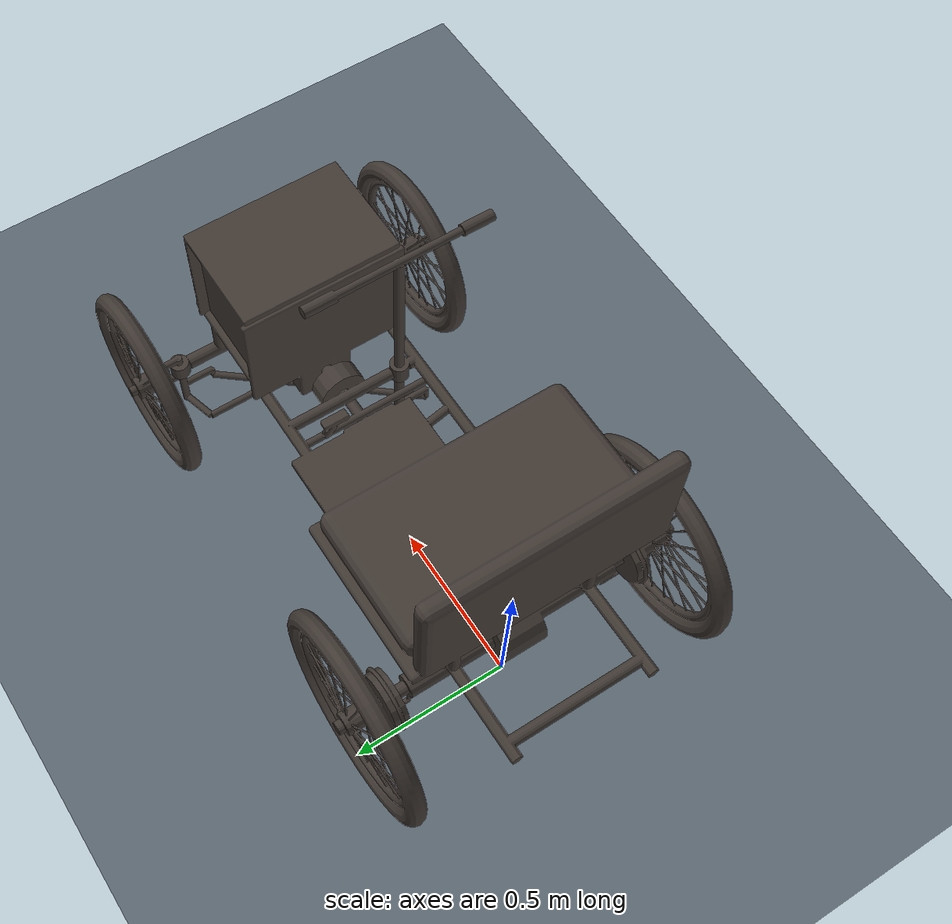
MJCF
<mujoco model="Benz Velo">
  <compiler angle="radian" inertiafromgeom="false" />
  <option timestep=".001" gravity="0 0 -9.81" integrator="implicitfast" cone="elliptic" impratio="50">
    <flag filterparent="disable" />
  </option>
  <visual>
    <global offwidth="1920" offheight="1080" />
  </visual>
  <default>
    <geom friction="0.8 .005 .0001" condim="3" solref=".005 1" />
  </default>
  <asset>
    <mesh name="chassis" file="chassis.obj" />
    <mesh name="knuckle_left" file="knuckle_left.obj" />
    <mesh name="knuckle_right" file="knuckle_right.obj" />
    <mesh name="tie_rod" file="tie_rod.obj" />
    <mesh name="column" file="column.obj" />
    <mesh name="drag_link" file="drag_link.obj" />
    <mesh name="rear_left" file="rear_left.obj" />
    <mesh name="front_left" file="front_left.obj" />
    <mesh name="rear_right" file="rear_right.obj" />
    <mesh name="front_right" file="front_right.obj" />
    <texture name="road_grid" type="2d" builtin="checker" rgb1=".25 .3 .34" rgb2=".45 .5 .54" width="256" height="256" />
    <material name="road" texture="road_grid" texrepeat="1 1" texuniform="true" />
  </asset>
  <worldbody>
    <light pos="0 -3 6" dir="0 0 -1" directional="true" />
    <geom name="slope" type="plane" size="1000 60 .1" quat="1 0 0 0" material="road" contype="1" conaffinity="6" />
    <body name="chassis" pos="0 0 0.003" quat="1 0 0 0">
      <freejoint name="root" />
      <inertial pos="0.55 0 0.45" mass="226.2" diaginertia="18 40 45" />
      <geom name="visual_chassis" type="mesh" mesh="chassis" contype="0" conaffinity="0" group="2" rgba=".25 .22 .2 1" />
      <geom name="Frame rail -1:0" type="capsule" contype="2" conaffinity="15" group="3" rgba=".2 .6 .3 .35" fromto="-0.349999994 -0.219999999 0.419999987 1.35000002 -0.219999999 0.419999987" size="0.018" />
      <geom name="Frame rail 1:0" type="capsule" contype="2" conaffinity="15" group="3" rgba=".2 .6 .3 .35" fromto="-0.349999994 0.219999999 0.419999987 1.35000002 0.219999999 0.419999987" size="0.018" />
      <geom name="Frame crossmember -0.3:0" type="cylinder" contype="2" conaffinity="15" group="3" rgba=".2 .6 .3 .35" fromto="-0.300000012 -0.220000029 0.420000017 -0.300000012 0.220000029 0.419999957" size="0.018" />
      <geom name="Frame crossmember 1.33:0" type="cylinder" contype="2" conaffinity="15" group="3" rgba=".2 .6 .3 .35" fromto="1.33000004 -0.220000029 0.420000017 1.33000004 0.220000029 0.419999957" size="0.018" />
      <geom name="Column bearing:0" type="cylinder" contype="2" conaffinity="15" group="3" rgba=".2 .6 .3 .35" fromto="0.819999993 -0.159999996 0.389999986 0.819999993 -0.159999996 0.449999988" size="0.03" />
      <geom name="Column crossmember -1:0" type="cylinder" contype="2" conaffinity="15" group="3" rgba=".2 .6 .3 .35" fromto="0.819999993 -0.219999999 0.419999987 0.819999993 -0.189999998 0.419999987" size="0.018" />
      <geom name="Column crossmember 1:0" type="cylinder" contype="2" conaffinity="15" group="3" rgba=".2 .6 .3 .35" fromto="0.819999993 -0.13000001 0.420000017 0.819999993 0.220000014 0.419999957" size="0.018" />
      <geom name="Axle housing:0" type="cylinder" contype="2" conaffinity="15" group="3" rgba=".2 .6 .3 .35" fromto="0 -0.340000033 0.330000073 0 0.340000033 0.329999954" size="0.035" />
      <geom name="Differential housing:0" type="cylinder" contype="2" conaffinity="15" group="3" rgba=".2 .6 .3 .35" fromto="0 -0.0700000077 0.330000013 0 0.0700000077 0.330000013" size="0.085" />
      <geom name="Rear axle:0" type="cylinder" contype="2" conaffinity="15" group="3" rgba=".2 .6 .3 .35" fromto="0 -0.560000062 0.330000103 0 0.560000062 0.329999924" size="0.02" />
      <geom name="Axle mount -1:0" type="cylinder" contype="2" conaffinity="15" group="3" rgba=".2 .6 .3 .35" fromto="0 -0.219999999 0.36500001 0 -0.219999999 0.439999998" size="0.025" />
      <geom name="Front hanger -1:0" type="cylinder" contype="2" conaffinity="15" group="3" rgba=".2 .6 .3 .35" fromto="1.25 -0.219999999 0.420000017 1.25 -0.219999999 0.300000012" size="0.02" />
      <geom name="Axle mount 1:0" type="cylinder" contype="2" conaffinity="15" group="3" rgba=".2 .6 .3 .35" fromto="0 0.219999999 0.36500001 0 0.219999999 0.439999998" size="0.025" />
      <geom name="Front hanger 1:0" type="cylinder" contype="2" conaffinity="15" group="3" rgba=".2 .6 .3 .35" fromto="1.25 0.219999999 0.420000017 1.25 0.219999999 0.300000012" size="0.02" />
      <geom name="Front beam:0" type="cylinder" contype="2" conaffinity="15" group="3" rgba=".2 .6 .3 .35" fromto="1.25 -0.335000038 0.300000072 1.25 0.335000038 0.299999952" size="0.022" />
      <geom name="Axle eye 1:0" type="cylinder" contype="2" conaffinity="15" group="3" rgba=".2 .6 .3 .35" fromto="1.25 0.36500001 0.275000036 1.25 0.36500001 0.324999988" size="0.03" />
      <geom name="Axle eye -1:0" type="cylinder" contype="2" conaffinity="15" group="3" rgba=".2 .6 .3 .35" fromto="1.25 -0.36500001 0.275000036 1.25 -0.36500001 0.324999988" size="0.03" />
      <geom name="Crankcase" type="box" contype="2" conaffinity="15" group="3" rgba=".2 .6 .3 .35" pos="1.08000004 0 0.340000004" quat="1 0 0 0" size="0.100000001 0.0900000036 0.0900000036" />
      <geom name="Cylinder:0" type="cylinder" contype="2" conaffinity="15" group="3" rgba=".2 .6 .3 .35" fromto="1.08000004 0 0.430000037 1.08000004 0 0.74000001" size="0.055" />
      <geom name="Cooling fin 0:0" type="cylinder" contype="2" conaffinity="15" group="3" rgba=".2 .6 .3 .35" fromto="1.08000004 0 0.5 1.08000004 0 0.506000042" size="0.085" />
      <geom name="Cooling fin 1:0" type="cylinder" contype="2" conaffinity="15" group="3" rgba=".2 .6 .3 .35" fromto="1.08000004 0 0.544999957 1.08000004 0 0.550999999" size="0.085" />
      <geom name="Cooling fin 2:0" type="cylinder" contype="2" conaffinity="15" group="3" rgba=".2 .6 .3 .35" fromto="1.08000004 0 0.589999974 1.08000004 0 0.596000016" size="0.085" />
      <geom name="Cooling fin 3:0" type="cylinder" contype="2" conaffinity="15" group="3" rgba=".2 .6 .3 .35" fromto="1.08000004 0 0.63499999 1.08000004 0 0.641000032" size="0.085" />
      <geom name="Cooling fin 4:0" type="cylinder" contype="2" conaffinity="15" group="3" rgba=".2 .6 .3 .35" fromto="1.08000004 0 0.679999948 1.08000004 0 0.68599999" size="0.085" />
      <geom name="Cooling fin 5:0" type="cylinder" contype="2" conaffinity="15" group="3" rgba=".2 .6 .3 .35" fromto="1.08000004 0 0.725000024 1.08000004 0 0.731000066" size="0.085" />
      <geom name="Engine bearer -1:0" type="cylinder" contype="2" conaffinity="15" group="3" rgba=".2 .6 .3 .35" fromto="1.08000004 -0.219999999 0.400000006 1.08000004 -0.0900000036 0.389999956" size="0.014" />
      <geom name="Engine bearer 1:0" type="cylinder" contype="2" conaffinity="15" group="3" rgba=".2 .6 .3 .35" fromto="1.08000004 0.219999999 0.399999976 1.08000004 0.0900000036 0.389999986" size="0.014" />
      <geom name="Clutch shaft:0" type="cylinder" contype="2" conaffinity="15" group="3" rgba=".2 .6 .3 .35" fromto="0.99000001 0 0.340000004 0.730000019 0 0.340000004" size="0.018" />
      <geom name="Clutch cone:0" type="cylinder" contype="2" conaffinity="15" group="3" rgba=".2 .6 .3 .35" fromto="0.879999995 0 0.340000004 0.939999938 0 0.340000004" size="0.075" />
      <geom name="Gearbox" type="box" contype="2" conaffinity="15" group="3" rgba=".2 .6 .3 .35" pos="0.629999995 0 0.340000004" quat="1 0 0 0" size="0.109999999 0.0900000036 0.0700000003" />
      <geom name="Gearbox cradle -1:0" type="cylinder" contype="2" conaffinity="15" group="3" rgba=".2 .6 .3 .35" fromto="0.629999995 -0.220000029 0.419999987 0.629999995 -0.0899999812 0.369999975" size="0.014" />
      <geom name="Gearbox cradle 1:0" type="cylinder" contype="2" conaffinity="15" group="3" rgba=".2 .6 .3 .35" fromto="0.629999995 0.220000029 0.419999987 0.629999995 0.0899999812 0.369999975" size="0.014" />
      <geom name="Gearbox output:0" type="cylinder" contype="2" conaffinity="15" group="3" rgba=".2 .6 .3 .35" fromto="0.519999981 0 0.340000004 0.481999993 0 0.340000004" size="0.018" />
      <geom name="Front universal joint:0" type="cylinder" contype="2" conaffinity="15" group="3" rgba=".2 .6 .3 .35" fromto="0.481999993 -0.0279999971 0.340000004 0.481999993 0.0279999971 0.340000004" size="0.028" />
      <geom name="Propeller shaft:0" type="cylinder" contype="2" conaffinity="15" group="3" rgba=".2 .6 .3 .35" fromto="0.481999993 1.52525619e-08 0.340000004 0.139999986 -1.52525619e-08 0.335000008" size="0.016" />
      <geom name="Rear universal joint:0" type="cylinder" contype="2" conaffinity="15" group="3" rgba=".2 .6 .3 .35" fromto="0.140000001 -0.0279999971 0.335000008 0.140000001 0.0279999971 0.335000008" size="0.028" />
      <geom name="Pinion shaft:0" type="cylinder" contype="2" conaffinity="15" group="3" rgba=".2 .6 .3 .35" fromto="0.140000001 0 0.330000013 0.0700000077 0 0.330000013" size="0.018" />
      <geom name="Rear brake band -1:0" type="capsule" contype="2" conaffinity="15" group="3" rgba=".2 .6 .3 .35" fromto="0.0909999982 -0.402500004 0.330000013 0.0892514586 -0.402500004 0.347753227" size="0.006" />
      <geom name="Rear brake band -1:1" type="capsule" contype="2" conaffinity="15" group="3" rgba=".2 .6 .3 .35" fromto="0.0892514586 -0.402500004 0.347753227 0.0840730369 -0.402500004 0.364824206" size="0.006" />
      <geom name="Rear brake band -1:2" type="capsule" contype="2" conaffinity="15" group="3" rgba=".2 .6 .3 .35" fromto="0.0840730369 -0.402500004 0.364824206 0.075663738 -0.402500004 0.380556911" size="0.006" />
      <geom name="Rear brake band -1:3" type="capsule" contype="2" conaffinity="15" group="3" rgba=".2 .6 .3 .35" fromto="0.075663738 -0.402500004 0.380556911 0.0643467158 -0.402500004 0.394346714" size="0.006" />
      <geom name="Rear brake band -1:4" type="capsule" contype="2" conaffinity="15" group="3" rgba=".2 .6 .3 .35" fromto="0.0643467158 -0.402500004 0.394346714 0.0505568907 -0.402500004 0.405663759" size="0.006" />
      <geom name="Rear brake band -1:5" type="capsule" contype="2" conaffinity="15" group="3" rgba=".2 .6 .3 .35" fromto="0.0505568907 -0.402500004 0.405663759 0.0348241925 -0.402500004 0.41407305" size="0.006" />
      <geom name="Rear brake band -1:6" type="capsule" contype="2" conaffinity="15" group="3" rgba=".2 .6 .3 .35" fromto="0.0348241925 -0.402500004 0.41407305 0.0177532192 -0.402500004 0.419251472" size="0.006" />
      <geom name="Rear brake band -1:7" type="capsule" contype="2" conaffinity="15" group="3" rgba=".2 .6 .3 .35" fromto="0.0177532192 -0.402500004 0.419251472 5.57214296e-18 -0.402500004 0.421000004" size="0.006" />
      <geom name="Rear brake band -1:8" type="capsule" contype="2" conaffinity="15" group="3" rgba=".2 .6 .3 .35" fromto="5.57214296e-18 -0.402500004 0.421000004 -0.0177532192 -0.402500004 0.419251472" size="0.006" />
      <geom name="Rear brake band -1:9" type="capsule" contype="2" conaffinity="15" group="3" rgba=".2 .6 .3 .35" fromto="-0.0177532192 -0.402500004 0.419251472 -0.0348241925 -0.402500004 0.41407305" size="0.006" />
      <geom name="Rear brake band -1:10" type="capsule" contype="2" conaffinity="15" group="3" rgba=".2 .6 .3 .35" fromto="-0.0348241925 -0.402500004 0.41407305 -0.0505568907 -0.402500004 0.405663759" size="0.006" />
      <geom name="Rear brake band -1:11" type="capsule" contype="2" conaffinity="15" group="3" rgba=".2 .6 .3 .35" fromto="-0.0505568907 -0.402500004 0.405663759 -0.0643467158 -0.402500004 0.394346714" size="0.006" />
      <geom name="Rear brake band -1:12" type="capsule" contype="2" conaffinity="15" group="3" rgba=".2 .6 .3 .35" fromto="-0.0643467158 -0.402500004 0.394346714 -0.075663738 -0.402500004 0.380556911" size="0.006" />
      <geom name="Rear brake band -1:13" type="capsule" contype="2" conaffinity="15" group="3" rgba=".2 .6 .3 .35" fromto="-0.075663738 -0.402500004 0.380556911 -0.0840730369 -0.402500004 0.364824206" size="0.006" />
      <geom name="Rear brake band -1:14" type="capsule" contype="2" conaffinity="15" group="3" rgba=".2 .6 .3 .35" fromto="-0.0840730369 -0.402500004 0.364824206 -0.0892514586 -0.402500004 0.347753227" size="0.006" />
      <geom name="Rear brake band -1:15" type="capsule" contype="2" conaffinity="15" group="3" rgba=".2 .6 .3 .35" fromto="-0.0892514586 -0.402500004 0.347753227 -0.0909999982 -0.402500004 0.330000013" size="0.006" />
      <geom name="Rear brake band -1:16" type="capsule" contype="2" conaffinity="15" group="3" rgba=".2 .6 .3 .35" fromto="-0.0909999982 -0.402500004 0.330000013 -0.0892514586 -0.402500004 0.312246799" size="0.006" />
      <geom name="Rear brake band -1:17" type="capsule" contype="2" conaffinity="15" group="3" rgba=".2 .6 .3 .35" fromto="-0.0892514586 -0.402500004 0.312246799 -0.0840730369 -0.402500004 0.295175821" size="0.006" />
      <geom name="Rear brake band -1:18" type="capsule" contype="2" conaffinity="15" group="3" rgba=".2 .6 .3 .35" fromto="-0.0840730369 -0.402500004 0.295175821 -0.075663738 -0.402500004 0.279443115" size="0.006" />
      <geom name="Rear brake band -1:19" type="capsule" contype="2" conaffinity="15" group="3" rgba=".2 .6 .3 .35" fromto="-0.075663738 -0.402500004 0.279443115 -0.0643467158 -0.402500004 0.265653312" size="0.006" />
      <geom name="Rear brake band -1:20" type="capsule" contype="2" conaffinity="15" group="3" rgba=".2 .6 .3 .35" fromto="-0.0643467158 -0.402500004 0.265653312 -0.0505568907 -0.402500004 0.254336268" size="0.006" />
      <geom name="Rear brake band -1:21" type="capsule" contype="2" conaffinity="15" group="3" rgba=".2 .6 .3 .35" fromto="-0.0505568907 -0.402500004 0.254336268 -0.0348241925 -0.402500004 0.245926976" size="0.006" />
      <geom name="Rear brake band -1:22" type="capsule" contype="2" conaffinity="15" group="3" rgba=".2 .6 .3 .35" fromto="-0.0348241925 -0.402500004 0.245926976 -0.0177532192 -0.402500004 0.240748554" size="0.006" />
      <geom name="Rear brake band -1:23" type="capsule" contype="2" conaffinity="15" group="3" rgba=".2 .6 .3 .35" fromto="-0.0177532192 -0.402500004 0.240748554 -1.67164285e-17 -0.402500004 0.239000022" size="0.006" />
      <geom name="Rear brake band -1:24" type="capsule" contype="2" conaffinity="15" group="3" rgba=".2 .6 .3 .35" fromto="-1.67164285e-17 -0.402500004 0.239000022 0.0177532192 -0.402500004 0.240748554" size="0.006" />
      <geom name="Rear brake band -1:25" type="capsule" contype="2" conaffinity="15" group="3" rgba=".2 .6 .3 .35" fromto="0.0177532192 -0.402500004 0.240748554 0.0348241925 -0.402500004 0.245926976" size="0.006" />
      <geom name="Rear brake band -1:26" type="capsule" contype="2" conaffinity="15" group="3" rgba=".2 .6 .3 .35" fromto="0.0348241925 -0.402500004 0.245926976 0.0505568907 -0.402500004 0.254336268" size="0.006" />
      <geom name="Rear brake band -1:27" type="capsule" contype="2" conaffinity="15" group="3" rgba=".2 .6 .3 .35" fromto="0.0505568907 -0.402500004 0.254336268 0.0643467158 -0.402500004 0.265653312" size="0.006" />
      <geom name="Rear brake band -1:28" type="capsule" contype="2" conaffinity="15" group="3" rgba=".2 .6 .3 .35" fromto="0.0643467158 -0.402500004 0.265653312 0.075663738 -0.402500004 0.279443115" size="0.006" />
      <geom name="Rear brake band -1:29" type="capsule" contype="2" conaffinity="15" group="3" rgba=".2 .6 .3 .35" fromto="0.075663738 -0.402500004 0.279443115 0.0840730369 -0.402500004 0.295175821" size="0.006" />
      <geom name="Rear brake band -1:30" type="capsule" contype="2" conaffinity="15" group="3" rgba=".2 .6 .3 .35" fromto="0.0840730369 -0.402500004 0.295175821 0.0892514586 -0.402500004 0.312246799" size="0.006" />
      <geom name="Rear brake band -1:31" type="capsule" contype="2" conaffinity="15" group="3" rgba=".2 .6 .3 .35" fromto="0.0892514586 -0.402500004 0.312246799 0.0909999982 -0.402500004 0.330000013" size="0.006" />
      <geom name="Rear brake anchor -1:0" type="capsule" contype="2" conaffinity="15" group="3" rgba=".2 .6 .3 .35" fromto="0 -0.402500004 0.231000006 0 -0.402500004 0.215000004" size="0.008" />
      <geom name="Rear brake anchor -1:1" type="capsule" contype="2" conaffinity="15" group="3" rgba=".2 .6 .3 .35" fromto="0 -0.402500004 0.215000004 0 -0.330000013 0.215000004" size="0.008" />
      <geom name="Rear brake anchor -1:2" type="capsule" contype="2" conaffinity="15" group="3" rgba=".2 .6 .3 .35" fromto="0 -0.330000013 0.215000004 0 -0.330000013 0.294999987" size="0.008" />
      <geom name="Rear brake band 1:0" type="capsule" contype="2" conaffinity="15" group="3" rgba=".2 .6 .3 .35" fromto="0.0909999982 0.402500004 0.330000013 0.0892514586 0.402500004 0.347753227" size="0.006" />
      <geom name="Rear brake band 1:1" type="capsule" contype="2" conaffinity="15" group="3" rgba=".2 .6 .3 .35" fromto="0.0892514586 0.402500004 0.347753227 0.0840730369 0.402500004 0.364824206" size="0.006" />
      <geom name="Rear brake band 1:2" type="capsule" contype="2" conaffinity="15" group="3" rgba=".2 .6 .3 .35" fromto="0.0840730369 0.402500004 0.364824206 0.075663738 0.402500004 0.380556911" size="0.006" />
      <geom name="Rear brake band 1:3" type="capsule" contype="2" conaffinity="15" group="3" rgba=".2 .6 .3 .35" fromto="0.075663738 0.402500004 0.380556911 0.0643467158 0.402500004 0.394346714" size="0.006" />
      <geom name="Rear brake band 1:4" type="capsule" contype="2" conaffinity="15" group="3" rgba=".2 .6 .3 .35" fromto="0.0643467158 0.402500004 0.394346714 0.0505568907 0.402500004 0.405663759" size="0.006" />
      <geom name="Rear brake band 1:5" type="capsule" contype="2" conaffinity="15" group="3" rgba=".2 .6 .3 .35" fromto="0.0505568907 0.402500004 0.405663759 0.0348241925 0.402500004 0.41407305" size="0.006" />
      <geom name="Rear brake band 1:6" type="capsule" contype="2" conaffinity="15" group="3" rgba=".2 .6 .3 .35" fromto="0.0348241925 0.402500004 0.41407305 0.0177532192 0.402500004 0.419251472" size="0.006" />
      <geom name="Rear brake band 1:7" type="capsule" contype="2" conaffinity="15" group="3" rgba=".2 .6 .3 .35" fromto="0.0177532192 0.402500004 0.419251472 5.57214296e-18 0.402500004 0.421000004" size="0.006" />
      <geom name="Rear brake band 1:8" type="capsule" contype="2" conaffinity="15" group="3" rgba=".2 .6 .3 .35" fromto="5.57214296e-18 0.402500004 0.421000004 -0.0177532192 0.402500004 0.419251472" size="0.006" />
      <geom name="Rear brake band 1:9" type="capsule" contype="2" conaffinity="15" group="3" rgba=".2 .6 .3 .35" fromto="-0.0177532192 0.402500004 0.419251472 -0.0348241925 0.402500004 0.41407305" size="0.006" />
      <geom name="Rear brake band 1:10" type="capsule" contype="2" conaffinity="15" group="3" rgba=".2 .6 .3 .35" fromto="-0.0348241925 0.402500004 0.41407305 -0.0505568907 0.402500004 0.405663759" size="0.006" />
      <geom name="Rear brake band 1:11" type="capsule" contype="2" conaffinity="15" group="3" rgba=".2 .6 .3 .35" fromto="-0.0505568907 0.402500004 0.405663759 -0.0643467158 0.402500004 0.394346714" size="0.006" />
      <geom name="Rear brake band 1:12" type="capsule" contype="2" conaffinity="15" group="3" rgba=".2 .6 .3 .35" fromto="-0.0643467158 0.402500004 0.394346714 -0.075663738 0.402500004 0.380556911" size="0.006" />
      <geom name="Rear brake band 1:13" type="capsule" contype="2" conaffinity="15" group="3" rgba=".2 .6 .3 .35" fromto="-0.075663738 0.402500004 0.380556911 -0.0840730369 0.402500004 0.364824206" size="0.006" />
      <geom name="Rear brake band 1:14" type="capsule" contype="2" conaffinity="15" group="3" rgba=".2 .6 .3 .35" fromto="-0.0840730369 0.402500004 0.364824206 -0.0892514586 0.402500004 0.347753227" size="0.006" />
      <geom name="Rear brake band 1:15" type="capsule" contype="2" conaffinity="15" group="3" rgba=".2 .6 .3 .35" fromto="-0.0892514586 0.402500004 0.347753227 -0.0909999982 0.402500004 0.330000013" size="0.006" />
      <geom name="Rear brake band 1:16" type="capsule" contype="2" conaffinity="15" group="3" rgba=".2 .6 .3 .35" fromto="-0.0909999982 0.402500004 0.330000013 -0.0892514586 0.402500004 0.312246799" size="0.006" />
      <geom name="Rear brake band 1:17" type="capsule" contype="2" conaffinity="15" group="3" rgba=".2 .6 .3 .35" fromto="-0.0892514586 0.402500004 0.312246799 -0.0840730369 0.402500004 0.295175821" size="0.006" />
      <geom name="Rear brake band 1:18" type="capsule" contype="2" conaffinity="15" group="3" rgba=".2 .6 .3 .35" fromto="-0.0840730369 0.402500004 0.295175821 -0.075663738 0.402500004 0.279443115" size="0.006" />
      <geom name="Rear brake band 1:19" type="capsule" contype="2" conaffinity="15" group="3" rgba=".2 .6 .3 .35" fromto="-0.075663738 0.402500004 0.279443115 -0.0643467158 0.402500004 0.265653312" size="0.006" />
      <geom name="Rear brake band 1:20" type="capsule" contype="2" conaffinity="15" group="3" rgba=".2 .6 .3 .35" fromto="-0.0643467158 0.402500004 0.265653312 -0.0505568907 0.402500004 0.254336268" size="0.006" />
      <geom name="Rear brake band 1:21" type="capsule" contype="2" conaffinity="15" group="3" rgba=".2 .6 .3 .35" fromto="-0.0505568907 0.402500004 0.254336268 -0.0348241925 0.402500004 0.245926976" size="0.006" />
      <geom name="Rear brake band 1:22" type="capsule" contype="2" conaffinity="15" group="3" rgba=".2 .6 .3 .35" fromto="-0.0348241925 0.402500004 0.245926976 -0.0177532192 0.402500004 0.240748554" size="0.006" />
      <geom name="Rear brake band 1:23" type="capsule" contype="2" conaffinity="15" group="3" rgba=".2 .6 .3 .35" fromto="-0.0177532192 0.402500004 0.240748554 -1.67164285e-17 0.402500004 0.239000022" size="0.006" />
      <geom name="Rear brake band 1:24" type="capsule" contype="2" conaffinity="15" group="3" rgba=".2 .6 .3 .35" fromto="-1.67164285e-17 0.402500004 0.239000022 0.0177532192 0.402500004 0.240748554" size="0.006" />
      <geom name="Rear brake band 1:25" type="capsule" contype="2" conaffinity="15" group="3" rgba=".2 .6 .3 .35" fromto="0.0177532192 0.402500004 0.240748554 0.0348241925 0.402500004 0.245926976" size="0.006" />
      <geom name="Rear brake band 1:26" type="capsule" contype="2" conaffinity="15" group="3" rgba=".2 .6 .3 .35" fromto="0.0348241925 0.402500004 0.245926976 0.0505568907 0.402500004 0.254336268" size="0.006" />
      <geom name="Rear brake band 1:27" type="capsule" contype="2" conaffinity="15" group="3" rgba=".2 .6 .3 .35" fromto="0.0505568907 0.402500004 0.254336268 0.0643467158 0.402500004 0.265653312" size="0.006" />
      <geom name="Rear brake band 1:28" type="capsule" contype="2" conaffinity="15" group="3" rgba=".2 .6 .3 .35" fromto="0.0643467158 0.402500004 0.265653312 0.075663738 0.402500004 0.279443115" size="0.006" />
      <geom name="Rear brake band 1:29" type="capsule" contype="2" conaffinity="15" group="3" rgba=".2 .6 .3 .35" fromto="0.075663738 0.402500004 0.279443115 0.0840730369 0.402500004 0.295175821" size="0.006" />
      <geom name="Rear brake band 1:30" type="capsule" contype="2" conaffinity="15" group="3" rgba=".2 .6 .3 .35" fromto="0.0840730369 0.402500004 0.295175821 0.0892514586 0.402500004 0.312246799" size="0.006" />
      <geom name="Rear brake band 1:31" type="capsule" contype="2" conaffinity="15" group="3" rgba=".2 .6 .3 .35" fromto="0.0892514586 0.402500004 0.312246799 0.0909999982 0.402500004 0.330000013" size="0.006" />
      <geom name="Rear brake anchor 1:0" type="capsule" contype="2" conaffinity="15" group="3" rgba=".2 .6 .3 .35" fromto="0 0.402500004 0.231000006 0 0.402500004 0.215000004" size="0.008" />
      <geom name="Rear brake anchor 1:1" type="capsule" contype="2" conaffinity="15" group="3" rgba=".2 .6 .3 .35" fromto="0 0.402500004 0.215000004 0 0.330000013 0.215000004" size="0.008" />
      <geom name="Rear brake anchor 1:2" type="capsule" contype="2" conaffinity="15" group="3" rgba=".2 .6 .3 .35" fromto="0 0.330000013 0.215000004 0 0.330000013 0.294999987" size="0.008" />
      <geom name="Pedal shaft:0" type="cylinder" contype="2" conaffinity="15" group="3" rgba=".2 .6 .3 .35" fromto="0.75999999 -0.220000029 0.390000015 0.75999999 0.220000029 0.389999956" size="0.012" />
      <geom name="Pedal:0" type="cylinder" contype="2" conaffinity="15" group="3" rgba=".2 .6 .3 .35" fromto="0.75999999 0.13000001 0.389999986 0.700000048 0.12999998 0.550000012" size="0.014" />
      <geom name="Pedal pad" type="box" contype="2" conaffinity="15" group="3" rgba=".2 .6 .3 .35" pos="0.699999988 0.129999995 0.560000002" quat="1 0 0 0" size="0.0149999997 0.0399999991 0.00999999978" />
      <geom name="Seat support -0.05.-1:0" type="cylinder" contype="2" conaffinity="15" group="3" rgba=".2 .6 .3 .35" fromto="-0.0500000007 -0.219999999 0.420000017 -0.0500000007 -0.219999999 0.699999988" size="0.016" />
      <geom name="Seat support -0.05.1:0" type="cylinder" contype="2" conaffinity="15" group="3" rgba=".2 .6 .3 .35" fromto="-0.0500000007 0.219999999 0.420000017 -0.0500000007 0.219999999 0.699999988" size="0.016" />
      <geom name="Seat support 0.3.-1:0" type="cylinder" contype="2" conaffinity="15" group="3" rgba=".2 .6 .3 .35" fromto="0.300000012 -0.219999999 0.420000017 0.300000012 -0.219999999 0.699999988" size="0.016" />
      <geom name="Seat support 0.3.1:0" type="cylinder" contype="2" conaffinity="15" group="3" rgba=".2 .6 .3 .35" fromto="0.300000012 0.219999999 0.420000017 0.300000012 0.219999999 0.699999988" size="0.016" />
      <geom name="Seat base" type="box" contype="2" conaffinity="15" group="3" rgba=".2 .6 .3 .35" pos="0.129999995 0 0.714999974" quat="1 0 0 0" size="0.25 0.400000006 0.0149999997" />
      <geom name="Seat cushion" type="box" contype="2" conaffinity="15" group="3" rgba=".2 .6 .3 .35" pos="0.144999996 0 0.769999981" quat="1 0 0 0" size="0.219999999 0.379999995 0.0399999991" />
      <geom name="Seat back" type="box" contype="2" conaffinity="15" group="3" rgba=".2 .6 .3 .35" pos="-0.104999997 0 0.920000017" quat="1 0 0 0" size="0.0299999993 0.379999995 0.189999998" />
      <geom name="Footboard" type="box" contype="2" conaffinity="15" group="3" rgba=".2 .6 .3 .35" pos="0.555000007 0.0799999982 0.450500011" quat="1 0 0 0" size="0.144999996 0.200000003 0.0125000002" />
      <geom name="Dash" type="box" contype="2" conaffinity="15" group="3" rgba=".2 .6 .3 .35" pos="0.954999983 0 0.61500001" quat="1 0 0 0" size="0.00999999978 0.25999999 0.185000002" />
      <geom name="Bonnet side -1" type="box" contype="2" conaffinity="15" group="3" rgba=".2 .6 .3 .35" pos="1.13 -0.211999997 0.61500001" quat="1 0 0 0" size="0.165000007 0.00600000005 0.185000002" />
      <geom name="Bonnet side 1" type="box" contype="2" conaffinity="15" group="3" rgba=".2 .6 .3 .35" pos="1.13 0.211999997 0.61500001" quat="1 0 0 0" size="0.165000007 0.00600000005 0.185000002" />
      <geom name="Bonnet lid" type="box" contype="2" conaffinity="15" group="3" rgba=".2 .6 .3 .35" pos="1.13 0 0.810000002" quat="1 0 0 0" size="0.174999997 0.25 0.00999999978" />
      <geom name="Bonnet front" type="box" contype="2" conaffinity="15" group="3" rgba=".2 .6 .3 .35" pos="1.29999995 0 0.61500001" quat="1 0 0 0" size="0.00600000005 0.25 0.185000002" />
      <body name="knuckle_left" pos="1.25 0.365 0.3">
        <joint name="knuckle_left_joint" type="hinge" axis="0 0 1" damping="0.5" armature="0.01" />
        <inertial pos="-0.00619647981 0.0255830482 -0.0514072662" mass="1.5" fullinertia="0.013219205 0.00855052671 0.00598611739 -0.000444760825 -0.00110228638 -0.00350457053" />
        <geom name="visual_knuckle_left" type="mesh" mesh="knuckle_left" contype="0" conaffinity="0" group="2" rgba=".25 .22 .2 1" />
        <geom name="Kingpin 1:0" type="cylinder" contype="2" conaffinity="15" group="3" rgba=".2 .6 .3 .35" fromto="0 0 -0.180000007 0 0 0.0499999821" size="0.012" />
        <geom name="Knuckle upper ear 1:0" type="cylinder" contype="2" conaffinity="15" group="3" rgba=".2 .6 .3 .35" fromto="0 0 0.0409999788 0 0.0479999781 0.0409999788" size="0.012" />
        <geom name="Knuckle lower ear 1:0" type="cylinder" contype="2" conaffinity="15" group="3" rgba=".2 .6 .3 .35" fromto="0 0 -0.0410000086 0 0.0479999781 -0.0410000086" size="0.012" />
        <geom name="Knuckle web 1:0" type="cylinder" contype="2" conaffinity="15" group="3" rgba=".2 .6 .3 .35" fromto="0 0.0479999781 -0.0410000086 0 0.0479999781 0.0410000086" size="0.012" />
        <geom name="Stub axle 1:0" type="cylinder" contype="2" conaffinity="15" group="3" rgba=".2 .6 .3 .35" fromto="0 0.0479999781 0 0 0.170000017 0" size="0.015" />
        <geom name="Steering arm 1:0" type="cylinder" contype="2" conaffinity="15" group="3" rgba=".2 .6 .3 .35" fromto="0 2.98023224e-08 -0.170000017 -0.105590582 -0.0308324397 -0.170000017" size="0.011" />
        <geom name="Drag arm:0" type="cylinder" contype="2" conaffinity="15" group="3" rgba=".2 .6 .3 .35" fromto="0 0 -0.100000009 0 -0.100000024 -0.100000009" size="0.011" />
        <geom name="Drag arm stud:0" type="cylinder" contype="2" conaffinity="15" group="3" rgba=".2 .6 .3 .35" fromto="0 -0.100000024 -0.100000009 0 -0.100000024 -0.128000006" size="0.008" />
        <body name="tie_rod" pos="-0.105590534 -0.030832436 -0.17">
          <joint name="tie_rod_joint" type="hinge" axis="0 0 1" damping="0.5" armature="0.01" />
          <inertial pos="0 -0.334167585 1.18168659e-24" mass="0.7" fullinertia="0.0347481539 7e-06 0.0347481539 0 0 -4.64751979e-09" />
          <geom name="visual_tie_rod" type="mesh" mesh="tie_rod" contype="0" conaffinity="0" group="2" rgba=".25 .22 .2 1" />
          <geom name="Tie rod:0" type="cylinder" contype="2" conaffinity="15" group="3" rgba=".2 .6 .3 .35" fromto="0 2.98023224e-08 4.47034836e-08 0 -0.668335199 -4.47034836e-08" size="0.011" />
        </body>
        <body name="front_left" pos="0 0.11 0">
          <joint name="front_left_joint" type="hinge" axis="0 1 0" damping=".01" solreffriction=".004 1" solimpfriction=".999 .999 .001 .5 2" />
          <inertial pos="0 0 0" mass="4.0" diaginertia="0.18 0.36 0.18" />
          <geom name="front_left_envelope" type="cylinder" fromto="0 -0.035 0 0 0.035 0" size="0.3" contype="8" conaffinity="2" group="3" rgba=".2 .2 .2 .2" />
          <geom name="front_left_rolling" type="ellipsoid" size="0.3 0.03 0.3" solref="-2300 -48" solimp="0.5 0.95 0.01 0.5 2" contype="4" conaffinity="3" group="3" rgba=".1 .1 .1 .5" />
          <geom name="visual_front_left" type="mesh" mesh="front_left" contype="0" conaffinity="0" group="2" rgba=".25 .22 .2 1" />
          <geom name="front_left.hub:0" type="cylinder" contype="2" conaffinity="15" group="3" rgba=".2 .6 .3 .35" fromto="0 -0.0399999917 0 0 0.0399999917 0" size="0.035" />
        </body>
      </body>
      <body name="knuckle_right" pos="1.25 -0.365 0.3">
        <joint name="knuckle_right_joint" type="hinge" axis="0 0 1" damping="0.5" armature="0.01" />
        <inertial pos="-0.00706151532 -0.0370349343 -0.044371545" mass="1.5" fullinertia="0.0125820873 0.00911983121 0.00494319169 0.000628151296 -0.00133069114 0.00299074562" />
        <geom name="visual_knuckle_right" type="mesh" mesh="knuckle_right" contype="0" conaffinity="0" group="2" rgba=".25 .22 .2 1" />
        <geom name="Kingpin -1:0" type="cylinder" contype="2" conaffinity="15" group="3" rgba=".2 .6 .3 .35" fromto="0 0 -0.180000007 0 0 0.0499999821" size="0.012" />
        <geom name="Knuckle upper ear -1:0" type="cylinder" contype="2" conaffinity="15" group="3" rgba=".2 .6 .3 .35" fromto="0 0 0.0409999788 0 -0.0479999781 0.0409999788" size="0.012" />
        <geom name="Knuckle lower ear -1:0" type="cylinder" contype="2" conaffinity="15" group="3" rgba=".2 .6 .3 .35" fromto="0 0 -0.0410000086 0 -0.0479999781 -0.0410000086" size="0.012" />
        <geom name="Knuckle web -1:0" type="cylinder" contype="2" conaffinity="15" group="3" rgba=".2 .6 .3 .35" fromto="0 -0.0479999781 -0.0410000086 0 -0.0479999781 0.0410000086" size="0.012" />
        <geom name="Stub axle -1:0" type="cylinder" contype="2" conaffinity="15" group="3" rgba=".2 .6 .3 .35" fromto="0 -0.0479999781 0 0 -0.170000017 0" size="0.015" />
        <geom name="Steering arm -1:0" type="cylinder" contype="2" conaffinity="15" group="3" rgba=".2 .6 .3 .35" fromto="0 0 -0.170000002 -0.105590582 0.0308324099 -0.170000032" size="0.011" />
        <body name="front_right" pos="0 -0.11 0">
          <joint name="front_right_joint" type="hinge" axis="0 1 0" damping=".01" solreffriction=".004 1" solimpfriction=".999 .999 .001 .5 2" />
          <inertial pos="0 0 0" mass="4.0" diaginertia="0.18 0.36 0.18" />
          <geom name="front_right_envelope" type="cylinder" fromto="0 -0.035 0 0 0.035 0" size="0.3" contype="8" conaffinity="2" group="3" rgba=".2 .2 .2 .2" />
          <geom name="front_right_rolling" type="ellipsoid" size="0.3 0.03 0.3" solref="-2300 -48" solimp="0.5 0.95 0.01 0.5 2" contype="4" conaffinity="3" group="3" rgba=".1 .1 .1 .5" />
          <geom name="visual_front_right" type="mesh" mesh="front_right" contype="0" conaffinity="0" group="2" rgba=".25 .22 .2 1" />
          <geom name="front_right.hub:0" type="cylinder" contype="2" conaffinity="15" group="3" rgba=".2 .6 .3 .35" fromto="0 -0.0399999917 0 0 0.0399999917 0" size="0.035" />
        </body>
      </body>
      <body name="column" pos="0.82 -0.16 0.2">
        <joint name="column_joint" type="hinge" axis="0 0 1" damping="0.5" armature="0.01" limited="true" range="-0.523598776 0.523598776" />
        <inertial pos="0 -0.00270488348 0.503776183" mass="1.5" fullinertia="0.139707494 0.115669497 0.0240529969 0 0 -0.00201039146" />
        <geom name="visual_column" type="mesh" mesh="column" contype="0" conaffinity="0" group="2" rgba=".25 .22 .2 1" />
        <geom name="Steering column:0" type="cylinder" contype="2" conaffinity="15" group="3" rgba=".2 .6 .3 .35" fromto="0 0 0.0149999708 0 0 0.75" size="0.016" />
        <geom name="Pitman arm:0" type="cylinder" contype="2" conaffinity="15" group="3" rgba=".2 .6 .3 .35" fromto="0 0 0.0150000006 0 -0.099999994 0.0150000006" size="0.011" />
        <geom name="Pitman stud:0" type="cylinder" contype="2" conaffinity="15" group="3" rgba=".2 .6 .3 .35" fromto="0 -0.099999994 0.0150000006 0 -0.099999994 -0.0279999822" size="0.008" />
        <geom name="Handlebar:0" type="cylinder" contype="2" conaffinity="15" group="3" rgba=".2 .6 .3 .35" fromto="0 -0.200000048 0.75 0 0.200000018 0.75" size="0.012" />
        <geom name="Handlebar grip -1:0" type="cylinder" contype="2" conaffinity="15" group="3" rgba=".2 .6 .3 .35" fromto="0 -0.200000018 0.75 0 -0.300000042 0.75" size="0.018" />
        <geom name="Handlebar grip 1:0" type="cylinder" contype="2" conaffinity="15" group="3" rgba=".2 .6 .3 .35" fromto="0 0.199999988 0.75 0 0.300000012 0.75" size="0.018" />
        <body name="drag_link" pos="0 -0.1 -0.028">
          <joint name="drag_link_joint" type="hinge" axis="0 0 1" damping="0.5" armature="0.01" />
          <inertial pos="0.214999974 0.262499973 1.03397577e-24" mass="0.6" fullinertia="0.0183810004 0.0123326705 0.0307076709 -0.0150500025 8.54333374e-10 1.0430813e-09" />
          <geom name="visual_drag_link" type="mesh" mesh="drag_link" contype="0" conaffinity="0" group="2" rgba=".25 .22 .2 1" />
          <geom name="Drag link:0" type="cylinder" contype="2" conaffinity="15" group="3" rgba=".2 .6 .3 .35" fromto="-5.96046448e-08 -2.98023224e-08 1.49011612e-08 0.430000007 0.524999976 -1.49011612e-08" size="0.011" />
        </body>
      </body>
      <body name="rear_left" pos="0 0.5 0.33">
        <joint name="rear_left_joint" type="hinge" axis="0 1 0" damping=".01" solreffriction=".004 1" solimpfriction=".999 .999 .001 .5 2" />
        <inertial pos="0 0 0" mass="5.0" diaginertia="0.27225 0.5445 0.27225" />
        <geom name="rear_left_envelope" type="cylinder" fromto="0 -0.035 0 0 0.035 0" size="0.33" contype="8" conaffinity="2" group="3" rgba=".2 .2 .2 .2" />
        <geom name="rear_left_rolling" type="ellipsoid" size="0.33 0.03 0.33" solref="-2300 -48" solimp="0.5 0.95 0.01 0.5 2" contype="4" conaffinity="3" group="3" rgba=".1 .1 .1 .5" />
        <geom name="visual_rear_left" type="mesh" mesh="rear_left" contype="0" conaffinity="0" group="2" rgba=".25 .22 .2 1" />
        <geom name="rear_left.hub:0" type="cylinder" contype="2" conaffinity="15" group="3" rgba=".2 .6 .3 .35" fromto="0 -0.0400000215 0 0 0.0400000215 0" size="0.035" />
        <geom name="rear_left.brake_drum:0" type="cylinder" contype="2" conaffinity="15" group="3" rgba=".2 .6 .3 .35" fromto="0 -0.120000005 0 0 -0.0749999881 0" size="0.085" />
        <geom name="rear_left.drum_carrier:0" type="cylinder" contype="2" conaffinity="15" group="3" rgba=".2 .6 .3 .35" fromto="0 -0.0800000131 0 0 -0.0349999964 0" size="0.035" />
      </body>
      <body name="rear_right" pos="0 -0.5 0.33">
        <joint name="rear_right_joint" type="hinge" axis="0 1 0" damping=".01" solreffriction=".004 1" solimpfriction=".999 .999 .001 .5 2" />
        <inertial pos="0 0 0" mass="5.0" diaginertia="0.27225 0.5445 0.27225" />
        <geom name="rear_right_envelope" type="cylinder" fromto="0 -0.035 0 0 0.035 0" size="0.33" contype="8" conaffinity="2" group="3" rgba=".2 .2 .2 .2" />
        <geom name="rear_right_rolling" type="ellipsoid" size="0.33 0.03 0.33" solref="-2300 -48" solimp="0.5 0.95 0.01 0.5 2" contype="4" conaffinity="3" group="3" rgba=".1 .1 .1 .5" />
        <geom name="visual_rear_right" type="mesh" mesh="rear_right" contype="0" conaffinity="0" group="2" rgba=".25 .22 .2 1" />
        <geom name="rear_right.hub:0" type="cylinder" contype="2" conaffinity="15" group="3" rgba=".2 .6 .3 .35" fromto="0 -0.0400000215 0 0 0.0400000215 0" size="0.035" />
        <geom name="rear_right.brake_drum:0" type="cylinder" contype="2" conaffinity="15" group="3" rgba=".2 .6 .3 .35" fromto="0 0.120000005 0 0 0.0749999881 0" size="0.085" />
        <geom name="rear_right.drum_carrier:0" type="cylinder" contype="2" conaffinity="15" group="3" rgba=".2 .6 .3 .35" fromto="0 0.0800000131 0 0 0.0349999964 0" size="0.035" />
      </body>
    </body>
  </worldbody>
  <contact>
    <exclude body1="chassis" body2="column" />
    <exclude body1="chassis" body2="knuckle_left" />
    <exclude body1="chassis" body2="knuckle_right" />
    <exclude body1="chassis" body2="rear_left" />
    <exclude body1="chassis" body2="rear_right" />
    <exclude body1="column" body2="drag_link" />
    <exclude body1="drag_link" body2="knuckle_left" />
    <exclude body1="front_left" body2="knuckle_left" />
    <exclude body1="front_right" body2="knuckle_right" />
    <exclude body1="knuckle_left" body2="tie_rod" />
    <exclude body1="knuckle_right" body2="tie_rod" />
  </contact>
  <equality>
    <connect body1="tie_rod" body2="knuckle_right" anchor="0 -0.668335128 0" solref=".002 1" />
    <connect body1="drag_link" body2="knuckle_left" anchor="0.43 0.525 0" solref=".002 1" />
  </equality>
  <actuator>
    <position name="column" joint="column_joint" kp="1000" kv="30" ctrllimited="true" ctrlrange="-0.523598776 0.523598776" forcelimited="true" forcerange="-30 30" />
    <motor name="drive_first" tendon="differential" gear="17.4" ctrllimited="true" ctrlrange="0 8.21239506" />
    <motor name="drive_second" tendon="differential" gear="10.44" ctrllimited="true" ctrlrange="0 8.21239506" />
    <motor name="drive_third" tendon="differential" gear="5.8" ctrllimited="true" ctrlrange="0 8.21239506" />
  </actuator>
  <tendon>
    <fixed name="differential" frictionloss="0" solreffriction=".004 1" solimpfriction=".999 .999 .001 .5 2">
      <joint joint="rear_left_joint" coef="0.5" />
      <joint joint="rear_right_joint" coef="0.5" />
    </fixed>
  </tendon>
</mujoco>
